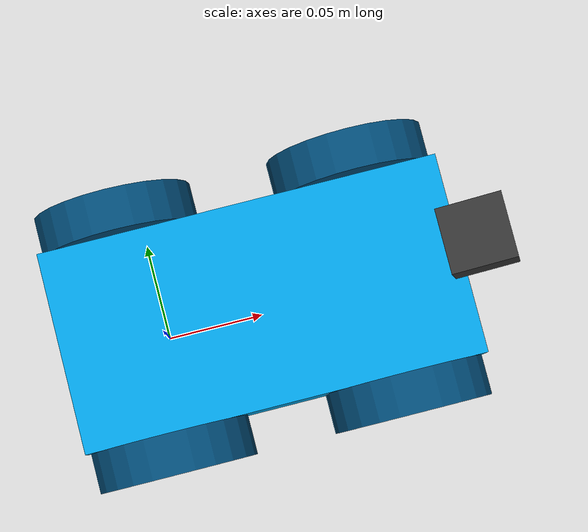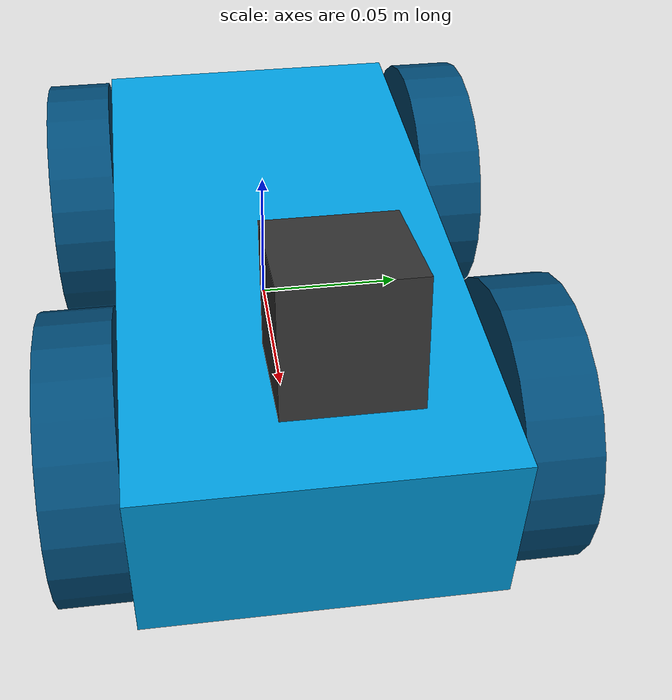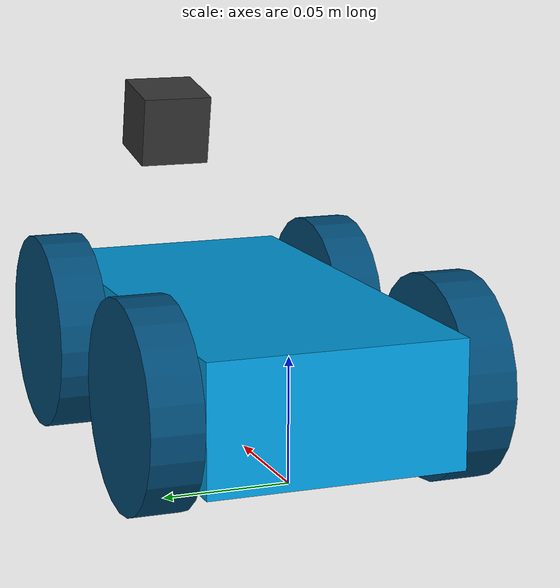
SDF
<?xml version="1.0" ?>
<sdf version="1.9">
  <model name="simple_robot_4w" canonical_link="chassis">
    <pose>0 0 0 0 0 0</pose>

    <link name="chassis">
      <pose relative_to="__model__">0.05 0 0.04 0 0 0</pose>
      <inertial>
        <mass>1</mass>
        <inertia>
          <ixx>0.001191615</ixx><ixy>0</ixy><ixz>0</ixz>
          <iyy>0.004051490</iyy><iyz>0</iyz><izz>0.004766458</izz>
        </inertia>
      </inertial>
      <visual name="visual">
        <geometry><box><size>0.2 0.1 0.05</size></box></geometry>
        <material>
          <ambient>0.0 0.612 0.867 1</ambient>
          <diffuse>0.0 0.612 0.867 1</diffuse>
          <specular>0.0 0.612 0.867 1</specular>
        </material>
      </visual>
      <collision name="collision">
        <geometry><box><size>0.2 0.1 0.05</size></box></geometry>
      </collision>
    </link>

    <link name="left_front_wheel">
      <pose relative_to="chassis">0.06 0.06 0 -1.5707 0 0</pose>
      <inertial>
        <mass>0.2</mass>
        <inertia>
          <ixx>0.000800</ixx><ixy>0</ixy><ixz>0</ixz>
          <iyy>0.000433</iyy><iyz>0</iyz><izz>0.000433</izz>
        </inertia>
      </inertial>
      <visual name="visual">
        <geometry><cylinder><radius>0.04</radius><length>0.02</length></cylinder></geometry>
        <material>
          <ambient>0.0 0.29 0.46 1</ambient>
          <diffuse>0.0 0.29 0.46 1</diffuse>
          <specular>0.0 0.0 0.0 1</specular>
        </material>
      </visual>
      <collision name="collision">
        <geometry><cylinder><radius>0.04</radius><length>0.02</length></cylinder></geometry>
      </collision>
    </link>

    <link name="left_rear_wheel">
      <pose relative_to="chassis">-0.06 0.06 0 -1.5707 0 0</pose>
      <inertial>
        <mass>0.2</mass>
        <inertia>
          <ixx>0.000800</ixx><ixy>0</ixy><ixz>0</ixz>
          <iyy>0.000433</iyy><iyz>0</iyz><izz>0.000433</izz>
        </inertia>
      </inertial>
      <visual name="visual">
        <geometry><cylinder><radius>0.04</radius><length>0.02</length></cylinder></geometry>
        <material>
          <ambient>0.0 0.29 0.46 1</ambient>
          <diffuse>0.0 0.29 0.46 1</diffuse>
          <specular>0.0 0.0 0.0 1</specular>
        </material>
      </visual>
      <collision name="collision">
        <geometry><cylinder><radius>0.04</radius><length>0.02</length></cylinder></geometry>
      </collision>
    </link>

    <link name="right_front_wheel">
      <pose relative_to="chassis">0.06 -0.06 0 -1.5707 0 0</pose>
      <inertial>
        <mass>0.2</mass>
        <inertia>
          <ixx>0.000800</ixx><ixy>0</ixy><ixz>0</ixz>
          <iyy>0.000433</iyy><iyz>0</iyz><izz>0.000433</izz>
        </inertia>
      </inertial>
      <visual name="visual">
        <geometry><cylinder><radius>0.04</radius><length>0.02</length></cylinder></geometry>
        <material>
          <ambient>0.0 0.29 0.46 1</ambient>
          <diffuse>0.0 0.29 0.46 1</diffuse>
          <specular>0.0 0.0 0.0 1</specular>
        </material>
      </visual>
      <collision name="collision">
        <geometry><cylinder><radius>0.04</radius><length>0.02</length></cylinder></geometry>
      </collision>
    </link>

    <link name="right_rear_wheel">
      <pose relative_to="chassis">-0.06 -0.06 0 -1.5707 0 0</pose>
      <inertial>
        <mass>0.2</mass>
        <inertia>
          <ixx>0.000800</ixx><ixy>0</ixy><ixz>0</ixz>
          <iyy>0.000433</iyy><iyz>0</iyz><izz>0.000433</izz>
        </inertia>
      </inertial>
      <visual name="visual">
        <geometry><cylinder><radius>0.04</radius><length>0.02</length></cylinder></geometry>
        <material>
          <ambient>0.0 0.29 0.46 1</ambient>
          <diffuse>0.0 0.29 0.46 1</diffuse>
          <specular>0.0 0.0 0.0 1</specular>
        </material>
      </visual>
      <collision name="collision">
        <geometry><cylinder><radius>0.04</radius><length>0.02</length></cylinder></geometry>
      </collision>
    </link>

    <joint name="left_front_wheel_joint" type="revolute">
      <pose relative_to="left_front_wheel"/>
      <parent>chassis</parent>
      <child>left_front_wheel</child>
      <axis>
        <xyz expressed_in="__model__">0 1 0</xyz>
        <limit><lower>-1.79769e+308</lower><upper>1.79769e+308</upper></limit>
      </axis>
    </joint>

    <joint name="left_rear_wheel_joint" type="revolute">
      <pose relative_to="left_rear_wheel"/>
      <parent>chassis</parent>
      <child>left_rear_wheel</child>
      <axis>
        <xyz expressed_in="__model__">0 1 0</xyz>
        <limit><lower>-1.79769e+308</lower><upper>1.79769e+308</upper></limit>
      </axis>
    </joint>

    <joint name="right_front_wheel_joint" type="revolute">
      <pose relative_to="right_front_wheel"/>
      <parent>chassis</parent>
      <child>right_front_wheel</child>
      <axis>
        <xyz expressed_in="__model__">0 1 0</xyz>
        <limit><lower>-1.79769e+308</lower><upper>1.79769e+308</upper></limit>
      </axis>
    </joint>

    <joint name="right_rear_wheel_joint" type="revolute">
      <pose relative_to="right_rear_wheel"/>
      <parent>chassis</parent>
      <child>right_rear_wheel</child>
      <axis>
        <xyz expressed_in="__model__">0 1 0</xyz>
        <limit><lower>-1.79769e+308</lower><upper>1.79769e+308</upper></limit>
      </axis>
    </joint>

    <plugin filename="libignition-gazebo-diff-drive-system.so"
            name="ignition::gazebo::systems::DiffDrive">
      <left_joint>left_front_wheel_joint</left_joint>
      <left_joint>left_rear_wheel_joint</left_joint>
      <right_joint>right_front_wheel_joint</right_joint>
      <right_joint>right_rear_wheel_joint</right_joint>
      <wheel_separation>0.12</wheel_separation>
      <wheel_radius>0.04</wheel_radius>
      <odom_publish_frequency>10</odom_publish_frequency>
      <topic>cmd_vel</topic>
    </plugin>

    <!-- ====================== CAMERA LINK (adapted from reference) ====================== -->
    <link name="camera_link">
      <pose relative_to="chassis">0.1 0 0.08 0 -0.8 -0,8</pose>
      <inertial>
        <mass>0.01</mass>
        <inertia>
          <ixx>1e-6</ixx><iyy>1e-6</iyy><izz>1e-6</izz>
          <ixy>0</ixy><ixz>0</ixz><iyz>0</iyz>
        </inertia>
      </inertial>

      <visual name="camera_visual">
        <geometry><box><size>0.03 0.03 0.03</size></box></geometry>
        <material>
          <ambient>0 0 0 1</ambient>
          <diffuse>0.2 0.2 0.2 1</diffuse>
        </material>
      </visual>

      <sensor name="camera_sensor" type="camera">
        <pose>0 0 0 0 -0.8 -0.8</pose>
        <always_on>true</always_on>
        <update_rate>30</update_rate>
        <visualize>true</visualize>
        <camera>
          <horizontal_fov>1.047</horizontal_fov>
          <image>
            <width>640</width>
            <height>480</height>
            <format>RGB_INT8</format>
          </image>
          <clip>
            <near>0.1</near>
            <far>100</far>
          </clip>
        </camera>
        <topic>camera/image_raw</topic>
      </sensor>
    </link>

  </model>
</sdf>
